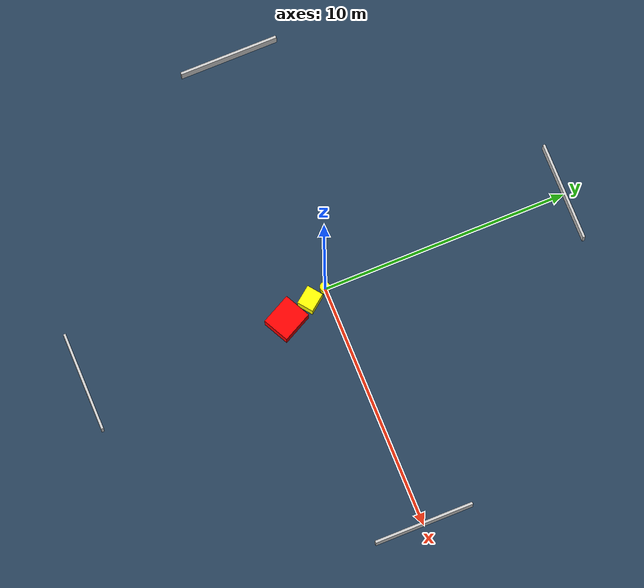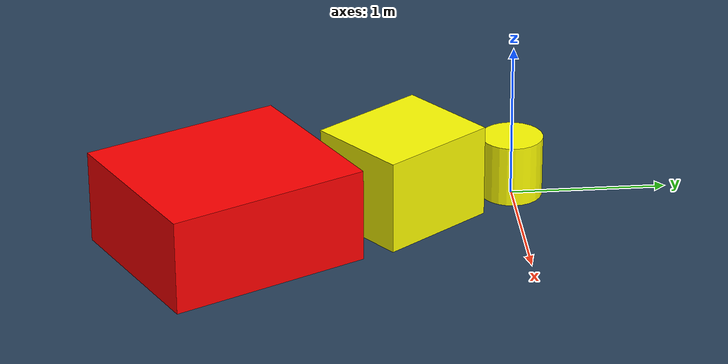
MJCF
<?xml version="1.0" ?>
<mujoco model="generated_environment">
  <option timestep="0.01" integrator="RK4" cone="elliptic"/>
  <default>
    <geom density="1"/>
  </default>
  <asset>
    <texture builtin="gradient" height="3072" name="skybox" rgb1="0.3 0.5 0.7" rgb2="0 0 0" type="skybox" width="512"/>
    <texture builtin="checker" height="300" name="groundplane" rgb1="0.2 0.3 0.4" rgb2="0.1 0.2 0.3" type="2d" width="300"/>
    <material name="groundplane" reflectance="0.2" texrepeat="5 5" texture="groundplane"/>
  </asset>
  <worldbody>
    <light dir="0 0 -1" directional="true" pos="0 0 1.5"/>
    <geom condim="3" friction="0.5 0.005 0.001" material="groundplane" name="floor" pos="0 0 0" size="0 0 0.05" type="plane"/>
    <body name="walls">
      <geom name="wall_1" condim="4" pos="-10.0 0.0 0.3" rgba="0.800000011920929 0.800000011920929 0.800000011920929 1.0" size="0.05 2.0 0.3" type="box"/>
      <geom name="wall_2" condim="4" pos="10.0 0.0 0.3" rgba="0.800000011920929 0.800000011920929 0.800000011920929 1.0" size="0.05 2.0 0.3" type="box"/>
      <geom name="wall_3" condim="4" pos="0.0 -10.0 0.3" rgba="0.800000011920929 0.800000011920929 0.800000011920929 1.0" size="2.0 0.05 0.3" type="box"/>
      <geom name="wall_4" condim="4" pos="0.0 10.0 0.3" rgba="0.800000011920929 0.800000011920929 0.800000011920929 1.0" size="2.0 0.05 0.3" type="box"/>
    </body>
    <body name="robot">
      <joint name="joint_x" type="slide" pos="0 0 0" axis="1 0 0"/>
      <joint name="joint_y" type="slide" pos="0 0 0" axis="0 1 0"/>
      <geom name="robot" type="cylinder" pos="0.0 0.0 0.2" size="0.2 0.2 0.0" mass="5.0" friction="1.0 0.005 0.0001" condim="4" rgba="1.0 1.0 0.0 1.0"/>
    </body>
    <body name="obstacle_1_movable">
      <geom name="obstacle_1_movable" condim="4" pos="0.25671919758101697 -0.7227151123978439 0.3" euler="0 0 127.56077983200072" friction="0.0 0.005 0.001" rgba="1.0 1.0 0.0 1.0" size="0.3916036897962 0.3338857981857222 0.3" type="box" mass="0.1"/>
      <joint type="free"/>
    </body>
    <body name="obstacle_2_static">
      <geom name="obstacle_2_static" condim="4" pos="0.627275159638806 -1.8478189007325403 0.3" euler="0 0 117.16180563716014" friction="0.0 0.005 0.001" rgba="1.0 0.0 0.0 1.0" size="0.6484132243598971 0.5596183806072823 0.3" type="box"/>
    </body>
  </worldbody>
  <actuator>
    <motor name="actuator_x" joint="joint_x" gear="1" ctrlrange="-1 1"/>
    <motor name="actuator_y" joint="joint_y" gear="1" ctrlrange="-1 1"/>
  </actuator>
</mujoco>
